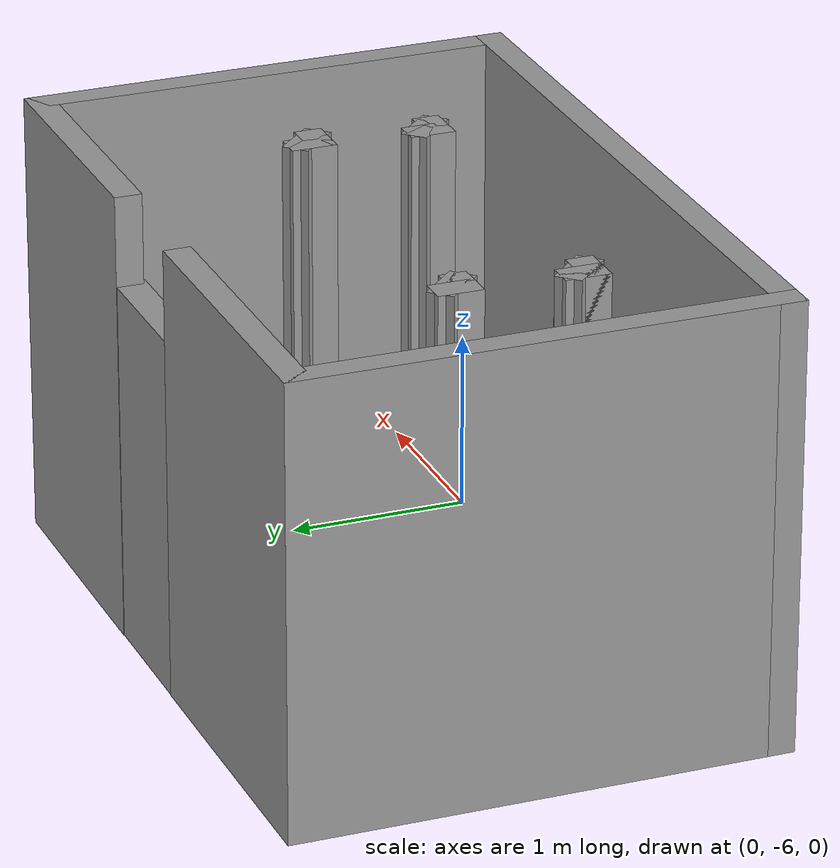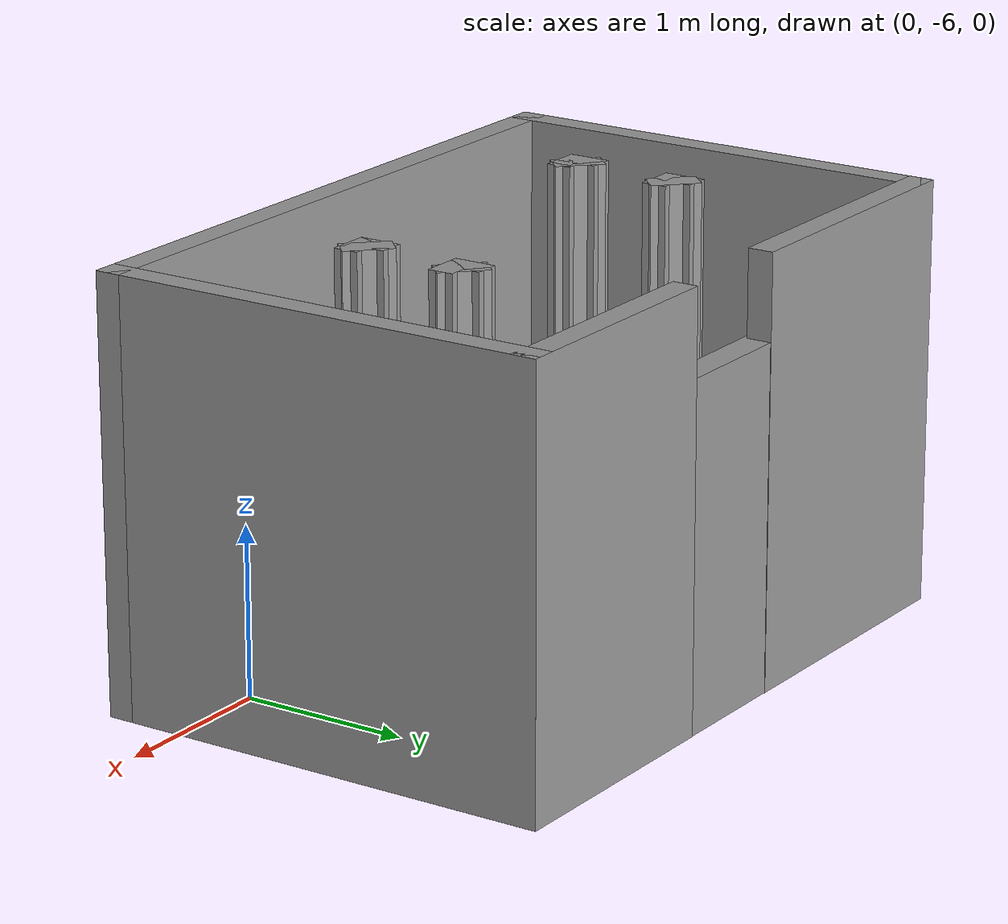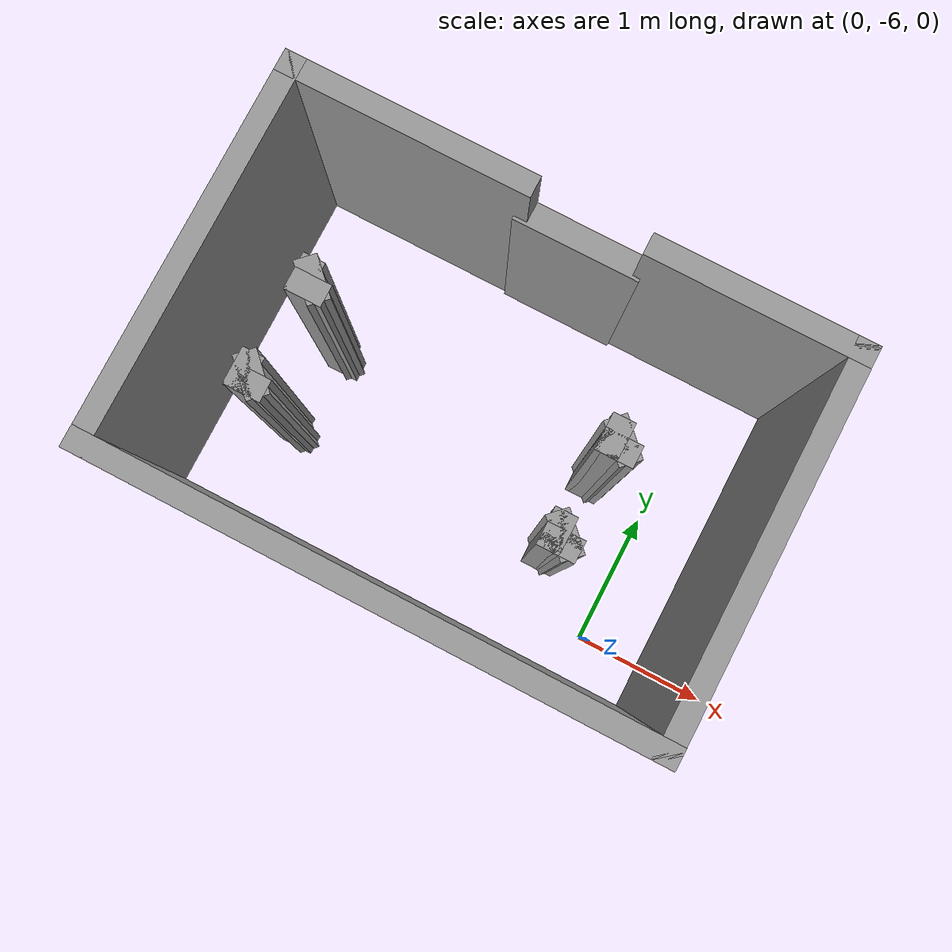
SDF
<?xml version='1.0'?>
<sdf version='1.7'>
  <model name='test'>
    <pose>-1.37686 -3.23323 0 0 -0 0</pose>
    <link name='Door_1'>
      <collision name='Door_1_Collision'>
        <geometry>
          <box>
            <size>0.9 0.17 2</size>
          </box>
        </geometry>
        <pose>0 0 1 0 -0 0</pose>
      </collision>
      <visual name='Door_1_Visual'>
        <pose>0 0 1 0 -0 0</pose>
        <geometry>
          <box>
            <size>0.9 0.17 2</size>
          </box>
        </geometry>
        <material>
          <script>
            <uri>file://media/materials/scripts/gazebo.material</uri>
            <name>Gazebo/Grey</name>
          </script>
        </material>
      </visual>
      <pose>0.103405 -0.571234 0 0 -0 0</pose>
    </link>
    <link name='Wall_10'>
      <collision name='Wall_10_Collision'>
        <geometry>
          <box>
            <size>0.25 0.15 2.5</size>
          </box>
        </geometry>
        <pose>0 0 1.25 0 -0 0</pose>
      </collision>
      <visual name='Wall_10_Visual'>
        <pose>0 0 1.25 0 -0 0</pose>
        <geometry>
          <box>
            <size>0.25 0.15 2.5</size>
          </box>
        </geometry>
        <material>
          <script>
            <uri>file://media/materials/scripts/gazebo.material</uri>
            <name>Gazebo/Grey</name>
          </script>
          <ambient>1 1 1 1</ambient>
        </material>
        <meta>
          <layer>0</layer>
        </meta>
      </visual>
      <pose>-1.1699 -1.72671 0 0 -0 0</pose>
    </link>
    <link name='Wall_11'>
      <collision name='Wall_11_Collision'>
        <geometry>
          <box>
            <size>0.291421 0.15 2.5</size>
          </box>
        </geometry>
        <pose>0 0 1.25 0 -0 0</pose>
      </collision>
      <visual name='Wall_11_Visual'>
        <pose>0 0 1.25 0 -0 0</pose>
        <geometry>
          <box>
            <size>0.291421 0.15 2.5</size>
          </box>
        </geometry>
        <material>
          <script>
            <uri>file://media/materials/scripts/gazebo.material</uri>
            <name>Gazebo/Grey</name>
          </script>
          <ambient>1 1 1 1</ambient>
        </material>
        <meta>
          <layer>0</layer>
        </meta>
      </visual>
      <pose>-1.1699 -1.67671 0 0 -0 2.35619</pose>
    </link>
    <link name='Wall_14'>
      <collision name='Wall_14_Collision'>
        <geometry>
          <box>
            <size>0.25 0.15 2.5</size>
          </box>
        </geometry>
        <pose>0 0 1.25 0 -0 0</pose>
      </collision>
      <visual name='Wall_14_Visual'>
        <pose>0 0 1.25 0 -0 0</pose>
        <geometry>
          <box>
            <size>0.25 0.15 2.5</size>
          </box>
        </geometry>
        <material>
          <script>
            <uri>file://media/materials/scripts/gazebo.material</uri>
            <name>Gazebo/Grey</name>
          </script>
          <ambient>1 1 1 1</ambient>
        </material>
        <meta>
          <layer>0</layer>
        </meta>
      </visual>
      <pose>-1.26427 -2.34238 0 0 -0 -1.5708</pose>
    </link>
    <link name='Wall_15'>
      <collision name='Wall_15_Collision'>
        <geometry>
          <box>
            <size>0.25 0.15 2.5</size>
          </box>
        </geometry>
        <pose>0 0 1.25 0 -0 0</pose>
      </collision>
      <visual name='Wall_15_Visual'>
        <pose>0 0 1.25 0 -0 0</pose>
        <geometry>
          <box>
            <size>0.25 0.15 2.5</size>
          </box>
        </geometry>
        <material>
          <script>
            <uri>file://media/materials/scripts/gazebo.material</uri>
            <name>Gazebo/Grey</name>
          </script>
          <ambient>1 1 1 1</ambient>
        </material>
        <meta>
          <layer>0</layer>
        </meta>
      </visual>
      <pose>-1.21427 -2.39238 0 0 -0 0</pose>
    </link>
    <link name='Wall_16'>
      <collision name='Wall_16_Collision'>
        <geometry>
          <box>
            <size>0.291421 0.15 2.5</size>
          </box>
        </geometry>
        <pose>0 0 1.25 0 -0 0</pose>
      </collision>
      <visual name='Wall_16_Visual'>
        <pose>0 0 1.25 0 -0 0</pose>
        <geometry>
          <box>
            <size>0.291421 0.15 2.5</size>
          </box>
        </geometry>
        <material>
          <script>
            <uri>file://media/materials/scripts/gazebo.material</uri>
            <name>Gazebo/Grey</name>
          </script>
          <ambient>1 1 1 1</ambient>
        </material>
        <meta>
          <layer>0</layer>
        </meta>
      </visual>
      <pose>-1.21427 -2.34238 0 0 -0 2.35619</pose>
    </link>
    <link name='Wall_2'>
      <collision name='Wall_2_Collision'>
        <geometry>
          <box>
            <size>1.5 0.15 2.5</size>
          </box>
        </geometry>
        <pose>0 0 1.25 0 -0 0</pose>
      </collision>
      <visual name='Wall_2_Visual'>
        <pose>0 0 1.25 0 -0 0</pose>
        <geometry>
          <box>
            <size>1.5 0.15 2.5</size>
          </box>
        </geometry>
        <material>
          <script>
            <uri>file://media/materials/scripts/gazebo.material</uri>
            <name>Gazebo/Grey</name>
          </script>
          <ambient>1 1 1 1</ambient>
        </material>
        <meta>
          <layer>0</layer>
        </meta>
      </visual>
      <pose>1.25 -0.558227 0 0 -0 0</pose>
    </link>
    <link name='Wall_20'>
      <collision name='Wall_20_Collision'>
        <geometry>
          <box>
            <size>0.25 0.15 2.5</size>
          </box>
        </geometry>
        <pose>0 0 1.25 0 -0 0</pose>
      </collision>
      <visual name='Wall_20_Visual'>
        <pose>0 0 1.25 0 -0 0</pose>
        <geometry>
          <box>
            <size>0.25 0.15 2.5</size>
          </box>
        </geometry>
        <material>
          <script>
            <uri>file://media/materials/scripts/gazebo.material</uri>
            <name>Gazebo/Grey</name>
          </script>
          <ambient>1 1 1 1</ambient>
        </material>
        <meta>
          <layer>0</layer>
        </meta>
      </visual>
      <pose>0.84684 -1.68305 0 0 -0 -1.5708</pose>
    </link>
    <link name='Wall_21'>
      <collision name='Wall_21_Collision'>
        <geometry>
          <box>
            <size>0.25 0.15 2.5</size>
          </box>
        </geometry>
        <pose>0 0 1.25 0 -0 0</pose>
      </collision>
      <visual name='Wall_21_Visual'>
        <pose>0 0 1.25 0 -0 0</pose>
        <geometry>
          <box>
            <size>0.25 0.15 2.5</size>
          </box>
        </geometry>
        <material>
          <script>
            <uri>file://media/materials/scripts/gazebo.material</uri>
            <name>Gazebo/Grey</name>
          </script>
          <ambient>1 1 1 1</ambient>
        </material>
        <meta>
          <layer>0</layer>
        </meta>
      </visual>
      <pose>0.89684 -1.73305 0 0 -0 0</pose>
    </link>
    <link name='Wall_22'>
      <collision name='Wall_22_Collision'>
        <geometry>
          <box>
            <size>0.291421 0.15 2.5</size>
          </box>
        </geometry>
        <pose>0 0 1.25 0 -0 0</pose>
      </collision>
      <visual name='Wall_22_Visual'>
        <pose>0 0 1.25 0 -0 0</pose>
        <geometry>
          <box>
            <size>0.291421 0.15 2.5</size>
          </box>
        </geometry>
        <material>
          <script>
            <uri>file://media/materials/scripts/gazebo.material</uri>
            <name>Gazebo/Grey</name>
          </script>
          <ambient>1 1 1 1</ambient>
        </material>
        <meta>
          <layer>0</layer>
        </meta>
      </visual>
      <pose>0.89684 -1.68305 0 0 -0 2.35619</pose>
    </link>
    <link name='Wall_3'>
      <collision name='Wall_3_Collision'>
        <geometry>
          <box>
            <size>2.75 0.15 2.5</size>
          </box>
        </geometry>
        <pose>0 0 1.25 0 -0 0</pose>
      </collision>
      <visual name='Wall_3_Visual'>
        <pose>0 0 1.25 0 -0 0</pose>
        <geometry>
          <box>
            <size>2.75 0.15 2.5</size>
          </box>
        </geometry>
        <material>
          <script>
            <uri>file://media/materials/scripts/gazebo.material</uri>
            <name>Gazebo/Grey</name>
          </script>
          <ambient>1 1 1 1</ambient>
        </material>
        <meta>
          <layer>0</layer>
        </meta>
      </visual>
      <pose>1.925 -1.85823 0 0 -0 -1.5708</pose>
    </link>
    <link name='Wall_30'>
      <collision name='Wall_30_Collision'>
        <geometry>
          <box>
            <size>0.25 0.15 2.5</size>
          </box>
        </geometry>
        <pose>0 0 1.25 0 -0 0</pose>
      </collision>
      <visual name='Wall_30_Visual'>
        <pose>0 0 1.25 0 -0 0</pose>
        <geometry>
          <box>
            <size>0.25 0.15 2.5</size>
          </box>
        </geometry>
        <material>
          <script>
            <uri>file://media/materials/scripts/gazebo.material</uri>
            <name>Gazebo/Grey</name>
          </script>
          <ambient>1 1 1 1</ambient>
        </material>
        <meta>
          <layer>0</layer>
        </meta>
      </visual>
      <pose>0.796122 -2.3297 0 0 -0 -1.5708</pose>
    </link>
    <link name='Wall_31'>
      <collision name='Wall_31_Collision'>
        <geometry>
          <box>
            <size>0.25 0.15 2.5</size>
          </box>
        </geometry>
        <pose>0 0 1.25 0 -0 0</pose>
      </collision>
      <visual name='Wall_31_Visual'>
        <pose>0 0 1.25 0 -0 0</pose>
        <geometry>
          <box>
            <size>0.25 0.15 2.5</size>
          </box>
        </geometry>
        <material>
          <script>
            <uri>file://media/materials/scripts/gazebo.material</uri>
            <name>Gazebo/Grey</name>
          </script>
          <ambient>1 1 1 1</ambient>
        </material>
        <meta>
          <layer>0</layer>
        </meta>
      </visual>
      <pose>0.846122 -2.3797 0 0 -0 0</pose>
    </link>
    <link name='Wall_32'>
      <collision name='Wall_32_Collision'>
        <geometry>
          <box>
            <size>0.291421 0.15 2.5</size>
          </box>
        </geometry>
        <pose>0 0 1.25 0 -0 0</pose>
      </collision>
      <visual name='Wall_32_Visual'>
        <pose>0 0 1.25 0 -0 0</pose>
        <geometry>
          <box>
            <size>0.291421 0.15 2.5</size>
          </box>
        </geometry>
        <material>
          <script>
            <uri>file://media/materials/scripts/gazebo.material</uri>
            <name>Gazebo/Grey</name>
          </script>
          <ambient>1 1 1 1</ambient>
        </material>
        <meta>
          <layer>0</layer>
        </meta>
      </visual>
      <pose>0.846122 -2.3297 0 0 -0 2.35619</pose>
    </link>
    <link name='Wall_4'>
      <collision name='Wall_4_Collision'>
        <geometry>
          <box>
            <size>4 0.15 2.5</size>
          </box>
        </geometry>
        <pose>0 0 1.25 0 -0 0</pose>
      </collision>
      <visual name='Wall_4_Visual'>
        <pose>0 0 1.25 0 -0 0</pose>
        <geometry>
          <box>
            <size>4 0.15 2.5</size>
          </box>
        </geometry>
        <material>
          <script>
            <uri>file://media/materials/scripts/gazebo.material</uri>
            <name>Gazebo/Grey</name>
          </script>
          <ambient>1 1 1 1</ambient>
        </material>
        <meta>
          <layer>0</layer>
        </meta>
      </visual>
      <pose>0 -3.15823 0 0 -0 3.14159</pose>
    </link>
    <link name='Wall_5'>
      <collision name='Wall_5_Collision'>
        <geometry>
          <box>
            <size>2.75 0.15 2.5</size>
          </box>
        </geometry>
        <pose>0 0 1.25 0 -0 0</pose>
      </collision>
      <visual name='Wall_5_Visual'>
        <pose>0 0 1.25 0 -0 0</pose>
        <geometry>
          <box>
            <size>2.75 0.15 2.5</size>
          </box>
        </geometry>
        <material>
          <script>
            <uri>file://media/materials/scripts/gazebo.material</uri>
            <name>Gazebo/Grey</name>
          </script>
          <ambient>1 1 1 1</ambient>
        </material>
        <meta>
          <layer>0</layer>
        </meta>
      </visual>
      <pose>-1.925 -1.85823 0 0 -0 1.5708</pose>
    </link>
    <link name='Wall_6'>
      <collision name='Wall_6_Collision'>
        <geometry>
          <box>
            <size>1.75 0.15 2.5</size>
          </box>
        </geometry>
        <pose>0 0 1.25 0 -0 0</pose>
      </collision>
      <visual name='Wall_6_Visual'>
        <pose>0 0 1.25 0 -0 0</pose>
        <geometry>
          <box>
            <size>1.75 0.15 2.5</size>
          </box>
        </geometry>
        <material>
          <script>
            <uri>file://media/materials/scripts/gazebo.material</uri>
            <name>Gazebo/Grey</name>
          </script>
          <ambient>1 1 1 1</ambient>
        </material>
        <meta>
          <layer>0</layer>
        </meta>
      </visual>
      <pose>-1.125 -0.558227 0 0 -0 0</pose>
    </link>
    <link name='Wall_9'>
      <collision name='Wall_9_Collision'>
        <geometry>
          <box>
            <size>0.25 0.15 2.5</size>
          </box>
        </geometry>
        <pose>0 0 1.25 0 -0 0</pose>
      </collision>
      <visual name='Wall_9_Visual'>
        <pose>0 0 1.25 0 -0 0</pose>
        <geometry>
          <box>
            <size>0.25 0.15 2.5</size>
          </box>
        </geometry>
        <material>
          <script>
            <uri>file://media/materials/scripts/gazebo.material</uri>
            <name>Gazebo/Grey</name>
          </script>
          <ambient>1 1 1 1</ambient>
        </material>
        <meta>
          <layer>0</layer>
        </meta>
      </visual>
      <pose>-1.2199 -1.67671 0 0 -0 -1.5708</pose>
    </link>
    <static>1</static>
  </model>
</sdf>
